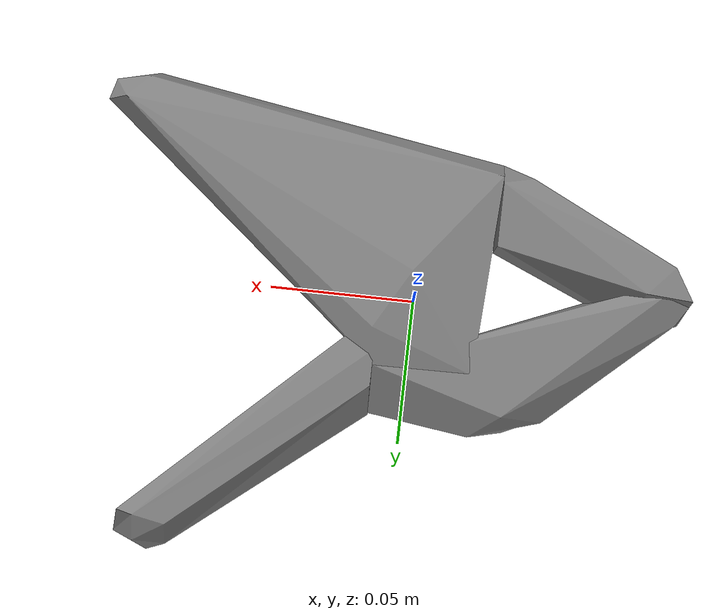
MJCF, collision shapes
<mujoco model="extra_large_clamp">
  <compiler angle="radian" />

  <asset>
    <mesh name="extra_large_clamp_visual_mesh" file="extra_large_clamp/textured.obj" />
    <mesh name="extra_large_clamp_collision_mesh_0" file="extra_large_clamp/textured_coacd_0.stl" />
    <mesh name="extra_large_clamp_collision_mesh_1" file="extra_large_clamp/textured_coacd_1.stl" />
    <mesh name="extra_large_clamp_collision_mesh_2" file="extra_large_clamp/textured_coacd_2.stl" />
    <mesh name="extra_large_clamp_collision_mesh_3" file="extra_large_clamp/textured_coacd_3.stl" />
    <texture name="extra_large_clamp_texture" type="2d" file="extra_large_clamp/texture_map.png" />
    <material name="extra_large_clamp_material" texture="extra_large_clamp_texture" />
  </asset>

  <worldbody>
    <body name="extra_large_clamp" pos="0 0 0" euler="0 0 0">
      <freejoint name="extra_large_clamp_joint" />
      <geom name="extra_large_clamp_visual_geom" type="mesh" mesh="extra_large_clamp_visual_mesh" material="extra_large_clamp_material" pos="0.029549933960517274 0.03660538138997692 -0.018078943770709878" euler="0 0 0" contype="0" conaffinity="0" group="0" />
      <geom name="extra_large_clamp_collision_geom_0" type="mesh" mesh="extra_large_clamp_collision_mesh_0" pos="0.029549933960517274 0.03660538138997692 -0.018078943770709878" euler="0 0 0" contype="1" conaffinity="1" group="3" />
      <geom name="extra_large_clamp_collision_geom_1" type="mesh" mesh="extra_large_clamp_collision_mesh_1" pos="0.029549933960517274 0.03660538138997692 -0.018078943770709878" euler="0 0 0" contype="1" conaffinity="1" group="3" />
      <geom name="extra_large_clamp_collision_geom_2" type="mesh" mesh="extra_large_clamp_collision_mesh_2" pos="0.029549933960517274 0.03660538138997692 -0.018078943770709878" euler="0 0 0" contype="1" conaffinity="1" group="3" />
      <geom name="extra_large_clamp_collision_geom_3" type="mesh" mesh="extra_large_clamp_collision_mesh_3" pos="0.029549933960517274 0.03660538138997692 -0.018078943770709878" euler="0 0 0" contype="1" conaffinity="1" group="3" />
      <inertial pos="0 0 0" euler="0 0 0" mass="0.202" diaginertia="0.001 0.001 0.001" />
    </body>
  </worldbody>
</mujoco>
